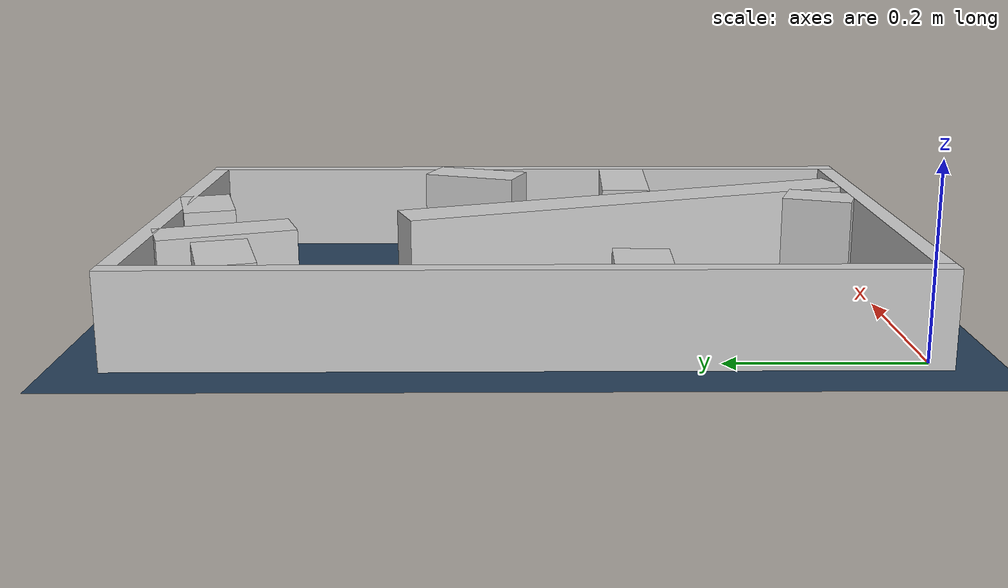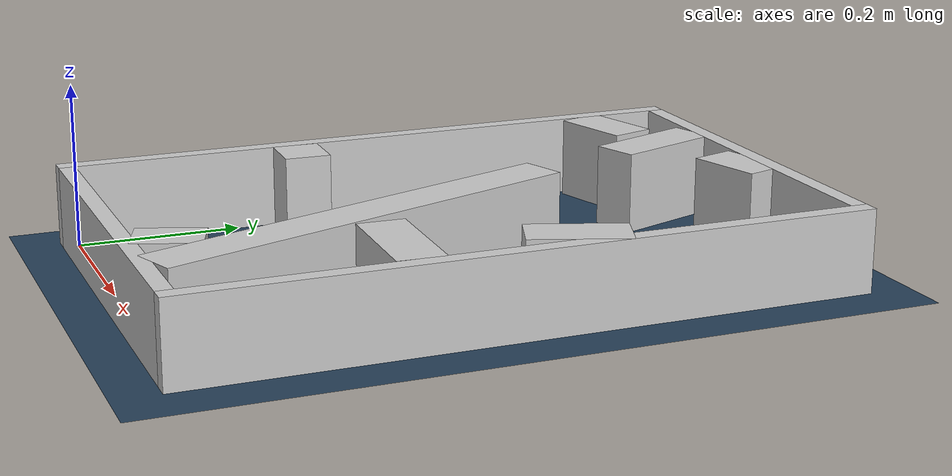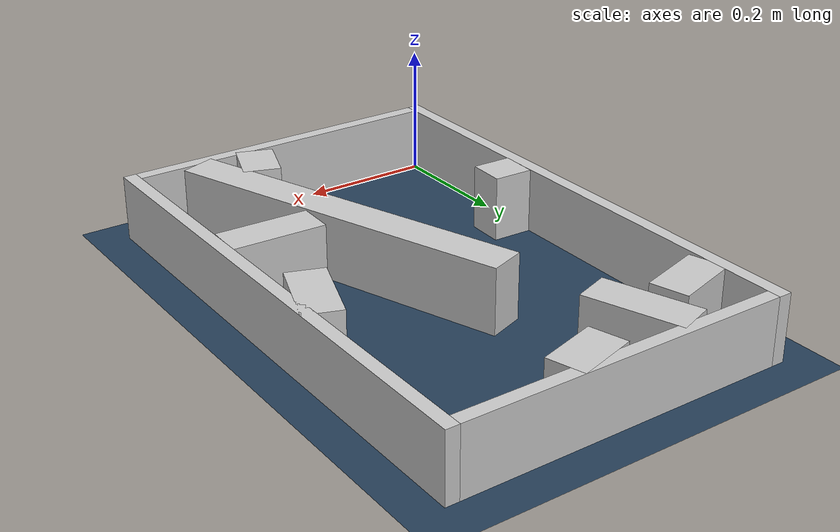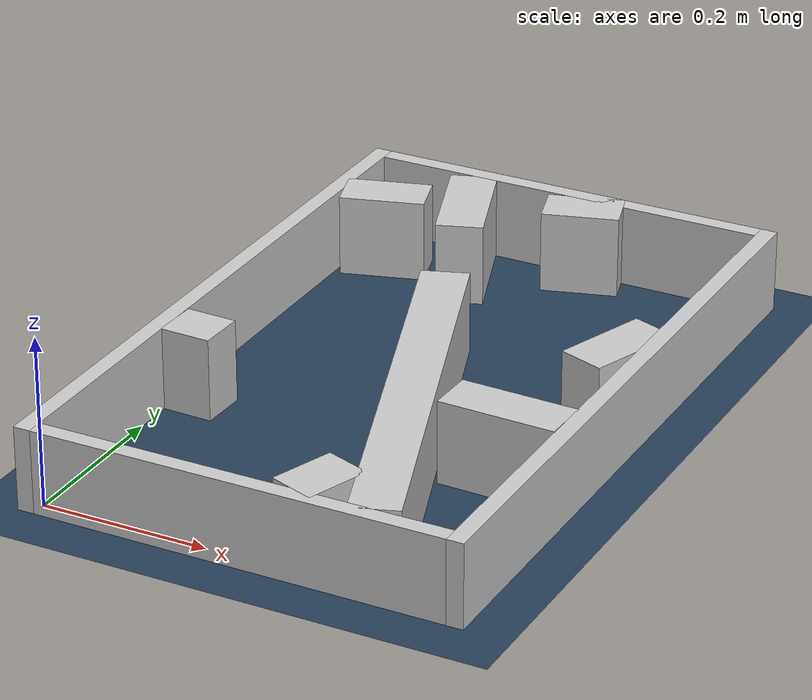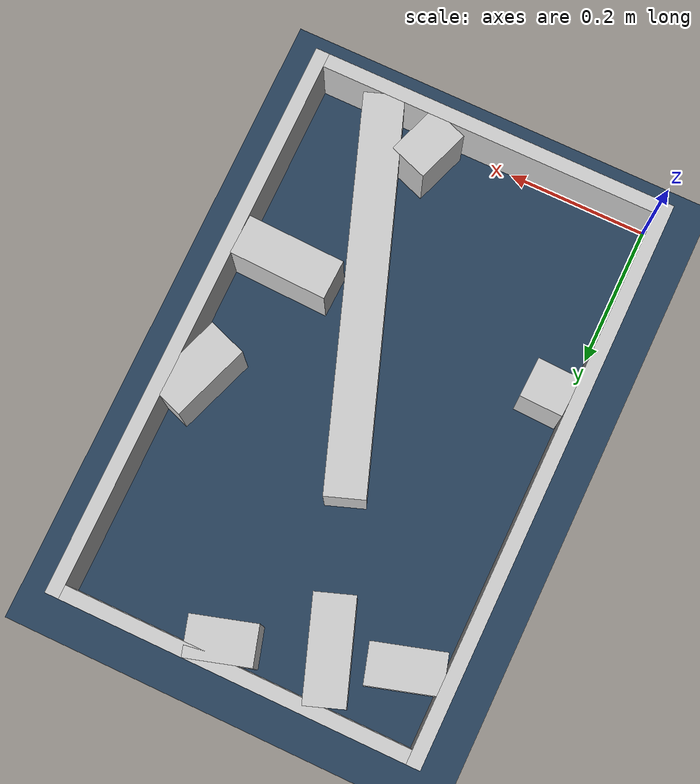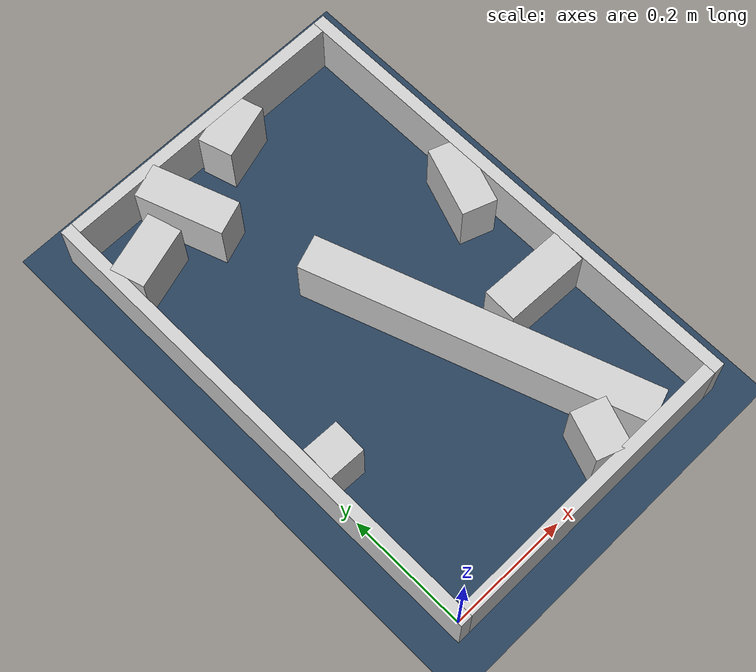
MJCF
<?xml version="1.0" ?>
<mujoco model="generated_real_template">
  <compiler angle="degree"/>
  <option timestep="0.002" integrator="implicitfast" iterations="100" cone="elliptic"/>
  <default>
    <geom density="1"/>
  </default>
  <asset>
    <texture builtin="gradient" height="3072" rgb1="0.3 0.5 0.7" rgb2="0 0 0" type="skybox" width="512"/>
    <texture builtin="checker" height="300" mark="edge" markrgb="0.8 0.8 0.8" name="groundplane" rgb1="0.2 0.3 0.4" rgb2="0.1 0.2 0.3" type="2d" width="300"/>
    <material name="groundplane" reflectance="0.2" texrepeat="5 5" texture="groundplane" texuniform="true"/>
  </asset>
  <worldbody>
    <light dir="0 0 -1" directional="true" pos="0 0 1.5"/>
    <geom name="floor" type="plane" condim="4" friction="0.5 0.005 0.001" material="groundplane" size="0 0 0.05"/>
    <body name="walls">
      <geom name="wall_boundary_left" type="box" condim="4" friction="1.0 0.005 0.0001" rgba="0.8 0.8 0.8 1" pos="-0.010000 0.387500 0.050000" euler="0 0 0.000000" size="0.010000 0.407500 0.050000"/>
      <geom name="wall_boundary_right" type="box" condim="4" friction="1.0 0.005 0.0001" rgba="0.8 0.8 0.8 1" pos="0.500000 0.387500 0.050000" euler="0 0 0.000000" size="0.010000 0.407500 0.050000"/>
      <geom name="wall_boundary_bottom" type="box" condim="4" friction="1.0 0.005 0.0001" rgba="0.8 0.8 0.8 1" pos="0.245000 -0.010000 0.050000" euler="0 0 0.000000" size="0.245000 0.010000 0.050000"/>
      <geom name="wall_boundary_top" type="box" condim="4" friction="1.0 0.005 0.0001" rgba="0.8 0.8 0.8 1" pos="0.245000 0.785000 0.050000" euler="0 0 0.000000" size="0.245000 0.010000 0.050000"/>
      <geom name="wall_inner_1_1" type="box" condim="4" friction="1.0 0.005 0.0001" rgba="0.8 0.8 0.8 1" pos="0.305801 0.261166 0.050000" euler="0 0 109.542633" size="0.277130 0.028500 0.050000"/>
      <geom name="wall_inner_1_2" type="box" condim="4" friction="1.0 0.005 0.0001" rgba="0.8 0.8 0.8 1" pos="0.147688 0.706609 0.050000" euler="0 0 109.542633" size="0.072572 0.028500 0.050000"/>
      <geom name="wall_inner_2_1" type="box" condim="4" friction="1.0 0.005 0.0001" rgba="0.8 0.8 0.8 1" pos="0.315780 0.037344 0.050000" euler="0 0 70.281135" size="0.039671 0.028500 0.050000"/>
      <geom name="wall_inner_2_2" type="box" condim="4" friction="1.0 0.005 0.0001" rgba="0.8 0.8 0.8 1" pos="0.463392 0.449181 0.050000" euler="0 0 70.281135" size="0.058620 0.028500 0.050000"/>
      <geom name="wall_inner_3_1" type="box" condim="4" friction="1.0 0.005 0.0001" rgba="0.8 0.8 0.8 1" pos="0.419922 0.262430 0.050000" euler="0 0 178.076473" size="0.070117 0.028500 0.050000"/>
      <geom name="wall_inner_3_2" type="box" condim="4" friction="1.0 0.005 0.0001" rgba="0.8 0.8 0.8 1" pos="0.030711 0.275501 0.050000" euler="0 0 178.076473" size="0.030728 0.028500 0.050000"/>
      <geom name="wall_inner_4_1" type="box" condim="4" friction="1.0 0.005 0.0001" rgba="0.8 0.8 0.8 1" pos="0.049325 0.686781 0.050000" euler="0 0 16.457199" size="0.051432 0.028500 0.050000"/>
      <geom name="wall_inner_4_2" type="box" condim="4" friction="1.0 0.005 0.0001" rgba="0.8 0.8 0.8 1" pos="0.278703 0.754539 0.050000" euler="0 0 16.457199" size="0.046338 0.028500 0.050000"/>
    </body>
  </worldbody>
</mujoco>
